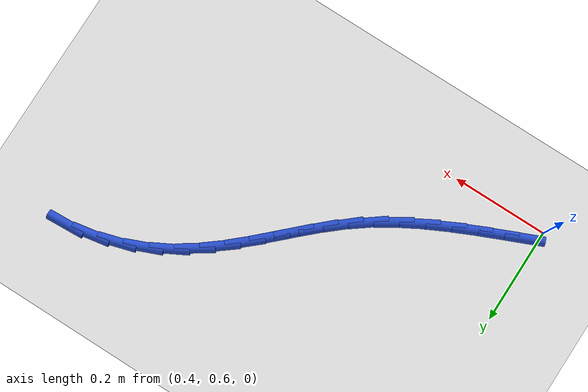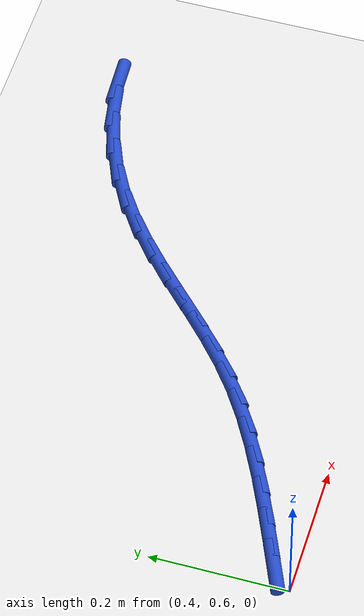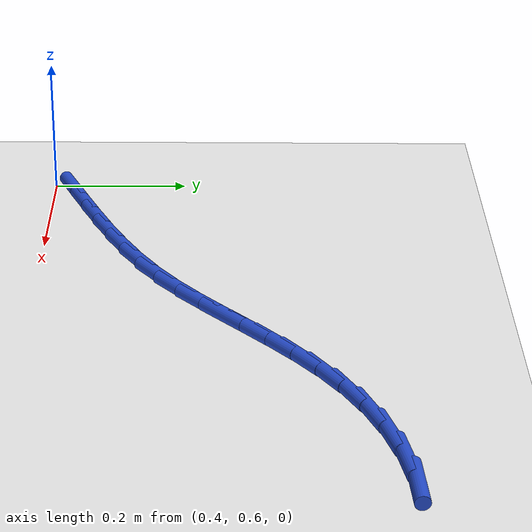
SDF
<sdf version="1.6">
 <world name="default">
  <model name="ground_plane">
   <static>1</static>
   <link name="link">
    <collision name="collision">
     <geometry><plane><normal>0 0 1</normal><size>100 100</size></plane></geometry>
     <surface><friction><ode><mu>100</mu><mu2>50</mu2></ode></friction></surface>
    </collision>
    <visual name="visual">
     <cast_shadows>0</cast_shadows>
     <geometry><plane><normal>0 0 1</normal><size>100 100</size></plane></geometry>
     <material>
      <script><uri>file://media/materials/scripts/gazebo.material</uri><name>Gazebo/WhiteGlow</name></script>
     </material>
    </visual>
   </link>
  </model>
  <model name="line">
   <link name="link_17">
    <pose>0.4263664381470178 0.6298876584916195 0.01 0 1.57 0.4042855924578332</pose>
    <collision name="collision">
     <geometry><cylinder><radius>0.01</radius><length>0.08</length></cylinder></geometry>
    </collision>
    <visual name="visual">
     <material>
      <script><name>Gazebo/Blue</name><uri>file://media/materials/scripts/gazebo.material</uri></script>
     </material>
     <geometry><cylinder><radius>0.01</radius><length>0.08</length></cylinder></geometry>
    </visual>
   </link>
   <link name="link_18">
    <pose>0.474060610764161 0.6502938048046254 0.01 0 1.57 0.41268313730122974</pose>
    <collision name="collision">
     <geometry><cylinder><radius>0.01</radius><length>0.08</length></cylinder></geometry>
    </collision>
    <visual name="visual">
     <material>
      <script><name>Gazebo/Blue</name><uri>file://media/materials/scripts/gazebo.material</uri></script>
     </material>
     <geometry><cylinder><radius>0.01</radius><length>0.08</length></cylinder></geometry>
    </visual>
   </link>
   <link name="link_19">
    <pose>0.521599174849987 0.6711073733044365 0.01 0 1.57 0.4333046288963181</pose>
    <collision name="collision">
     <geometry><cylinder><radius>0.01</radius><length>0.08</length></cylinder></geometry>
    </collision>
    <visual name="visual">
     <material>
      <script><name>Gazebo/Blue</name><uri>file://media/materials/scripts/gazebo.material</uri></script>
     </material>
     <geometry><cylinder><radius>0.01</radius><length>0.08</length></cylinder></geometry>
    </visual>
   </link>
   <link name="link_20">
    <pose>0.568470741086192 0.6927914165347122 0.01 0 1.57 0.46663667525193436</pose>
    <collision name="collision">
     <geometry><cylinder><radius>0.01</radius><length>0.08</length></cylinder></geometry>
    </collision>
    <visual name="visual">
     <material>
      <script><name>Gazebo/Blue</name><uri>file://media/materials/scripts/gazebo.material</uri></script>
     </material>
     <geometry><cylinder><radius>0.01</radius><length>0.08</length></cylinder></geometry>
    </visual>
   </link>
   <link name="link_21">
    <pose>0.6141639201544731 0.7158089870391124 0.01 0 1.57 0.5134632160605139</pose>
    <collision name="collision">
     <geometry><cylinder><radius>0.01</radius><length>0.08</length></cylinder></geometry>
    </collision>
    <visual name="visual">
     <material>
      <script><name>Gazebo/Blue</name><uri>file://media/materials/scripts/gazebo.material</uri></script>
     </material>
     <geometry><cylinder><radius>0.01</radius><length>0.08</length></cylinder></geometry>
    </visual>
   </link>
   <link name="link_22">
    <pose>0.6581673227365265 0.7406231373612968 0.01 0 1.57 0.5747309308227962</pose>
    <collision name="collision">
     <geometry><cylinder><radius>0.01</radius><length>0.08</length></cylinder></geometry>
    </collision>
    <visual name="visual">
     <material>
      <script><name>Gazebo/Blue</name><uri>file://media/materials/scripts/gazebo.material</uri></script>
     </material>
     <geometry><cylinder><radius>0.01</radius><length>0.08</length></cylinder></geometry>
    </visual>
   </link>
   <link name="link_23">
    <pose>0.6999695595140495 0.7676969200449257 0.01 0 1.57 0.6483174393849604</pose>
    <collision name="collision">
     <geometry><cylinder><radius>0.01</radius><length>0.08</length></cylinder></geometry>
    </collision>
    <visual name="visual">
     <material>
      <script><name>Gazebo/Blue</name><uri>file://media/materials/scripts/gazebo.material</uri></script>
     </material>
     <geometry><cylinder><radius>0.01</radius><length>0.08</length></cylinder></geometry>
    </visual>
   </link>
   <link name="link_24">
    <pose>0.7391666643884603 0.797390798857896 0.01 0 1.57 0.7107254150960269</pose>
    <collision name="collision">
     <geometry><cylinder><radius>0.01</radius><length>0.08</length></cylinder></geometry>
    </collision>
    <visual name="visual">
     <material>
      <script><name>Gazebo/Blue</name><uri>file://media/materials/scripts/gazebo.material</uri></script>
     </material>
     <geometry><cylinder><radius>0.01</radius><length>0.08</length></cylinder></geometry>
    </visual>
   </link>
   <link name="link_25">
    <pose>0.776194051309364 0.8292636327403522 0.01 0 1.57 0.7498045570435847</pose>
    <collision name="collision">
     <geometry><cylinder><radius>0.01</radius><length>0.08</length></cylinder></geometry>
    </collision>
    <visual name="visual">
     <material>
      <script><name>Gazebo/Blue</name><uri>file://media/materials/scripts/gazebo.material</uri></script>
     </material>
     <geometry><cylinder><radius>0.01</radius><length>0.08</length></cylinder></geometry>
    </visual>
   </link>
   <link name="link_26">
    <pose>0.8118819002451658 0.8624972805510219 0.01 0 1.57 0.765001297310169</pose>
    <collision name="collision">
     <geometry><cylinder><radius>0.01</radius><length>0.08</length></cylinder></geometry>
    </collision>
    <visual name="visual">
     <material>
      <script><name>Gazebo/Blue</name><uri>file://media/materials/scripts/gazebo.material</uri></script>
     </material>
     <geometry><cylinder><radius>0.01</radius><length>0.08</length></cylinder></geometry>
    </visual>
   </link>
   <link name="link_27">
    <pose>0.847062687291403 0.8962714083557525 0.01 0 1.57 0.7562482554368029</pose>
    <collision name="collision">
     <geometry><cylinder><radius>0.01</radius><length>0.08</length></cylinder></geometry>
    </collision>
    <visual name="visual">
     <material>
      <script><name>Gazebo/Blue</name><uri>file://media/materials/scripts/gazebo.material</uri></script>
     </material>
     <geometry><cylinder><radius>0.01</radius><length>0.08</length></cylinder></geometry>
    </visual>
   </link>
   <link name="link_28">
    <pose>0.8825688885436133 0.9297656822203908 0.01 0 1.57 0.7236447770030061</pose>
    <collision name="collision">
     <geometry><cylinder><radius>0.01</radius><length>0.08</length></cylinder></geometry>
    </collision>
    <visual name="visual">
     <material>
      <script><name>Gazebo/Blue</name><uri>file://media/materials/scripts/gazebo.material</uri></script>
     </material>
     <geometry><cylinder><radius>0.01</radius><length>0.08</length></cylinder></geometry>
    </visual>
   </link>
   <link name="link_29">
    <pose>0.919232980097334 0.9621597682107836 0.01 0 1.57 0.6676019463689604</pose>
    <collision name="collision">
     <geometry><cylinder><radius>0.01</radius><length>0.08</length></cylinder></geometry>
    </collision>
    <visual name="visual">
     <material>
      <script><name>Gazebo/Blue</name><uri>file://media/materials/scripts/gazebo.material</uri></script>
     </material>
     <geometry><cylinder><radius>0.01</radius><length>0.08</length></cylinder></geometry>
    </visual>
   </link>
   <link name="link_30">
    <pose>0.9578874380481026 0.9926333323927783 0.01 0 1.57 0.5893562884456904</pose>
    <collision name="collision">
     <geometry><cylinder><radius>0.01</radius><length>0.08</length></cylinder></geometry>
    </collision>
    <visual name="visual">
     <material>
      <script><name>Gazebo/Blue</name><uri>file://media/materials/scripts/gazebo.material</uri></script>
     </material>
     <geometry><cylinder><radius>0.01</radius><length>0.08</length></cylinder></geometry>
    </visual>
   </link>
   <link name="link_31">
    <pose>0.9993647384914577 1.0203660408322224 0.01 0 1.57 0.4920395509079483</pose>
    <collision name="collision">
     <geometry><cylinder><radius>0.01</radius><length>0.08</length></cylinder></geometry>
    </collision>
    <visual name="visual">
     <material>
      <script><name>Gazebo/Blue</name><uri>file://media/materials/scripts/gazebo.material</uri></script>
     </material>
     <geometry><cylinder><radius>0.01</radius><length>0.08</length></cylinder></geometry>
    </visual>
   </link>
   <link name="link_32">
    <pose>1.0444641228149922 1.0445397984660865 0.01 0 1.57 0.38790882425388795</pose>
    <collision name="collision">
     <geometry><cylinder><radius>0.01</radius><length>0.08</length></cylinder></geometry>
    </collision>
    <visual name="visual">
     <material>
      <script><name>Gazebo/Blue</name><uri>file://media/materials/scripts/gazebo.material</uri></script>
     </material>
     <geometry><cylinder><radius>0.01</radius><length>0.08</length></cylinder></geometry>
    </visual>
   </link>
   <link name="link_33">
    <pose>1.0930644766308868 1.064398510414211 0.01 0 1.57 0.2836419325629583</pose>
    <collision name="collision">
     <geometry><cylinder><radius>0.01</radius><length>0.08</length></cylinder></geometry>
    </collision>
    <visual name="visual">
     <material>
      <script><name>Gazebo/Blue</name><uri>file://media/materials/scripts/gazebo.material</uri></script>
     </material>
     <geometry><cylinder><radius>0.01</radius><length>0.08</length></cylinder></geometry>
    </visual>
   </link>
   <link name="link_34">
    <pose>1.1440283196683876 1.0792545497435986 0.01 0 1.57 0.17408744583447866</pose>
    <collision name="collision">
     <geometry><cylinder><radius>0.01</radius><length>0.08</length></cylinder></geometry>
    </collision>
    <visual name="visual">
     <material>
      <script><name>Gazebo/Blue</name><uri>file://media/materials/scripts/gazebo.material</uri></script>
     </material>
     <geometry><cylinder><radius>0.01</radius><length>0.08</length></cylinder></geometry>
    </visual>
   </link>
   <link name="link_35">
    <pose>1.1961656756387722 1.0884238259392338 0.01 0 1.57 0.053639491239369064</pose>
    <collision name="collision">
     <geometry><cylinder><radius>0.01</radius><length>0.08</length></cylinder></geometry>
    </collision>
    <visual name="visual">
     <material>
      <script><name>Gazebo/Blue</name><uri>file://media/materials/scripts/gazebo.material</uri></script>
     </material>
     <geometry><cylinder><radius>0.01</radius><length>0.08</length></cylinder></geometry>
    </visual>
   </link>
  </model>
 </world>
</sdf>
